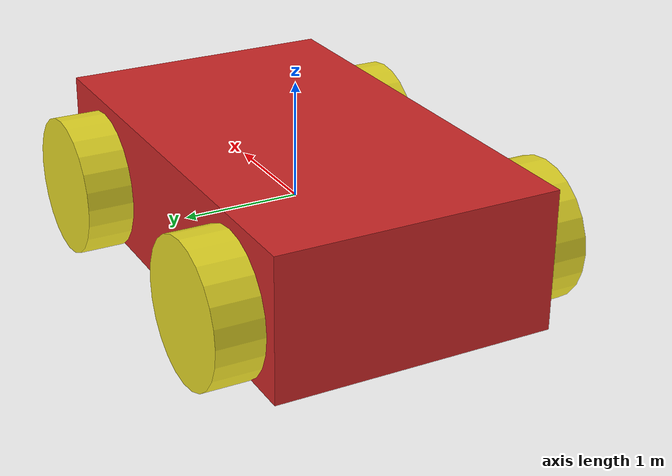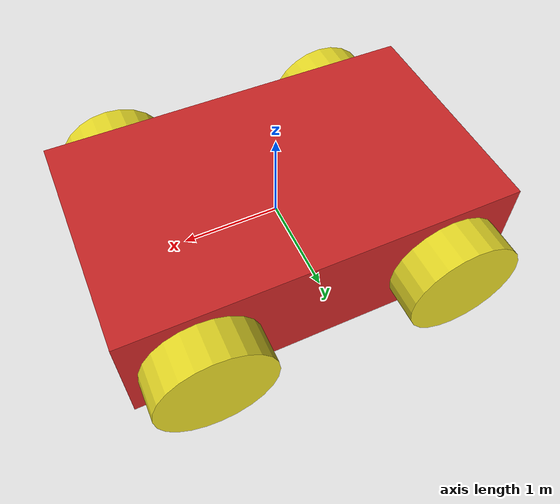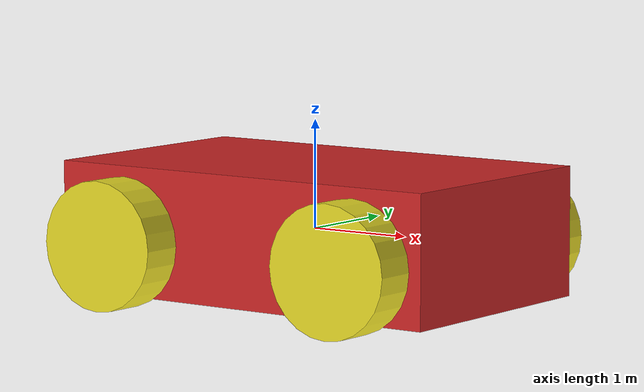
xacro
<?xml version="1.0"?>

<robot name="differential_drive_robot" xmlns:xacro="http://www.ros.org/wiki/xacro">

<xacro:property name="cameraSize" value="0.05"/>
<xacro:property name="cameraMass" value="0.1"/>

  <material name="green">
    <color rgba="0.0 0.8 0.0 1.0"/>
  </material>

<!-- Body dimensions -->
<xacro:property name="body_link_x_dim" value="4"/>
<xacro:property name="body_link_y_dim" value="2.4"/>
<xacro:property name="body_link_z_dim" value="1.2"/>

<!-- Wheel dimensions -->
<xacro:property name="wheel_link_radius" value="0.6"/>
<xacro:property name="wheel_link_length" value="0.4"/>
<xacro:property name="wheel_link_z_location" value="-0.1"/>

<!-- Material Density -->
<xacro:property name="body_density" value="2710.0"/>
<xacro:property name="wheel_density" value="2710.0"/>

<!-- Pi Constant -->
<xacro:property name="pi_const" value="3.141592265"/>

<!-- Robot body and wheel mass -->
<xacro:property name="body_mass" value="${body_density*body_link_x_dim*body_link_y_dim*body_link_z_dim}"/>
<xacro:property name="wheel_mass" value="${wheel_density*pi_const*wheel_link_radius*wheel_link_radius*wheel_link_length}"/>

<!-- Moments of inertial of the wheel -->
<xacro:property name="Iz_wheel" value="${0.5*wheel_mass*wheel_link_radius*wheel_link_radius}"/>
<xacro:property name="I_wheel" value="${(1.0/12.0)*wheel_mass*(3*wheel_link_radius*wheel_link_radius+wheel_link_length*wheel_link_length)}"/>

<!-- macros -->

<xacro:macro name="inertia_wheel">
    <inertial>
        <origin rpy="0 0 0" xyz="0 0 0"/>
        <mass value="${wheel_mass}"/>
        <inertia ixx="${I_wheel}" ixy="0.0" ixz="0.0" iyy="${I_wheel}" iyz="0" izz="${Iz_wheel}"/>

    </inertial>

</xacro:macro>

<xacro:include filename="$(find mobile_robot)/model/robot.gazebo"/>

<!-- DEFINING LINKS AND JOINTS -->

<link name="dummy">
</link>
<joint name="dummy_joint" type="fixed">
    <parent link="dummy"/>
    <child link="body_link"/>
</joint>

<!-- Body Link of Robot -->

<link name="body_link">
    <visual>
        <geometry>
            <box size="${body_link_x_dim} ${body_link_y_dim} ${body_link_z_dim}" />
        </geometry>
        <origin rpy="0 0 0" xyz="0 0 0"/>
    </visual>

    <collision>
        <geometry>
            <box size="${body_link_x_dim} ${body_link_y_dim} ${body_link_z_dim}" />
        </geometry>
        <origin rpy="0 0 0" xyz="0 0 0"/>

    </collision>

    <inertial>
        <origin rpy="0 0 0" xyz="0 0 0"/>
        <mass value="${body_mass}"/>
        <inertia
        ixx="${(1/12)*body_mass*(body_link_y_dim+body_link_z_dim*body_link_z_dim)}"
        ixy="0"
        ixz="0"
        iyy="${(1/12)*body_mass*(body_link_x_dim*body_link_x_dim+body_link_z_dim*body_link_z_dim)}"
        iyz="0"
        izz="${(1/12)*body_mass*(body_link_y_dim*body_link_y_dim+body_link_x_dim*body_link_x_dim)}"/>
    </inertial>
</link>

<!-- Back Right Wheel of Robot & Joint -->

<joint name="wheel1_joint" type="continuous">
    <parent link="body_link"/>
    <child link="wheel1_link"/>
    <origin xyz="${-body_link_x_dim/2+1.2*wheel_link_radius} ${-body_link_y_dim/2-wheel_link_length/2} ${wheel_link_z_location}" rpy="0 0 0"/>
    <axis xyz="0 1 0"/>
    <limit effort="1000" velocity="1000"/>
    <dynamics damping="1.0" friction="1.0"/>
</joint>

<link name="wheel1_link">
    <visual>
        <origin rpy="1.570795 0 0" xyz="0 0 0"/>
        <geometry>
            <cylinder length="${wheel_link_length}" radius="${wheel_link_radius}"/>
        </geometry>
    </visual>

    <collision>
        <origin rpy="1.570795 0 0" xyz="0 0 0"/>
        <geometry>
            <cylinder length="${wheel_link_length}" radius="${wheel_link_radius}"/>
        </geometry>
    </collision>

    <xacro:inertia_wheel />
</link>

<!-- Back Left Wheel of Robot & Joint -->

<joint name="wheel2_joint" type="continuous">
    <parent link="body_link"/>
    <child link="wheel2_link"/>
    <origin xyz="${-body_link_x_dim/2+1.2*wheel_link_radius} ${body_link_y_dim/2+wheel_link_length/2} ${wheel_link_z_location}" rpy="0 0 0"/>
    <axis xyz="0 1 0"/>
    <limit effort="1000" velocity="1000"/>
    <dynamics damping="1.0" friction="1.0"/>
</joint>

<link name="wheel2_link">
    <visual>
        <origin rpy="1.570795 0 0" xyz="0 0 0"/>
        <geometry>
            <cylinder length="${wheel_link_length}" radius="${wheel_link_radius}"/>
        </geometry>
    </visual>

    <collision>
        <origin rpy="1.570795 0 0" xyz="0 0 0"/>
        <geometry>
            <cylinder length="${wheel_link_length}" radius="${wheel_link_radius}"/>
        </geometry>
    </collision>

    <xacro:inertia_wheel />
</link>

<!-- Front Right Wheel of Robot & Joint -->

<joint name="wheel3_joint" type="continuous">
    <parent link="body_link"/>
    <child link="wheel3_link"/>
    <origin xyz="${body_link_x_dim/2-1.2*wheel_link_radius} ${-body_link_y_dim/2-wheel_link_length/2} ${wheel_link_z_location}" rpy="0 0 0"/>
    <axis xyz="0 1 0"/>
    <limit effort="1000" velocity="1000"/>
    <dynamics damping="1.0" friction="1.0"/>
</joint>

<link name="wheel3_link">
    <visual>
        <origin rpy="1.570795 0 0" xyz="0 0 0"/>
        <geometry>
            <cylinder length="${wheel_link_length}" radius="${wheel_link_radius}"/>
        </geometry>
    </visual>

    <collision>
        <origin rpy="1.570795 0 0" xyz="0 0 0"/>
        <geometry>
            <cylinder length="${wheel_link_length}" radius="${wheel_link_radius}"/>
        </geometry>
    </collision>

    <xacro:inertia_wheel />
</link>

<!-- Front Left Wheel of Robot & Joint -->

<joint name="wheel4_joint" type="continuous">
    <parent link="body_link"/>
    <child link="wheel4_link"/>
    <origin xyz="${body_link_x_dim/2-1.2*wheel_link_radius} ${body_link_y_dim/2+wheel_link_length/2} ${wheel_link_z_location}" rpy="0 0 0"/>
    <axis xyz="0 1 0"/>
    <limit effort="1000" velocity="1000"/>
    <dynamics damping="1.0" friction="1.0"/>
</joint>

<link name="wheel4_link">
    <visual>
        <origin rpy="1.570795 0 0" xyz="0 0 0"/>
        <geometry>
            <cylinder length="${wheel_link_length}" radius="${wheel_link_radius}"/>
        </geometry>
    </visual>

    <collision>
        <origin rpy="1.570795 0 0" xyz="0 0 0"/>
        <geometry>
            <cylinder length="${wheel_link_length}" radius="${wheel_link_radius}"/>
        </geometry>
    </collision>

    <xacro:inertia_wheel />
</link>

<link name="camera_link">
    <collision>
      <origin xyz="0 0 0" rpy="0 0 0"/>
      <geometry>
        <box size="${cameraSize} ${cameraSize} ${cameraSize}"/>
      </geometry>
    </collision>

    <visual>
      <origin xyz="0 0 0" rpy="0 0 0"/>
      <geometry>
        <box size="${cameraSize} ${cameraSize} ${cameraSize}"/>
      </geometry>
      <material name="green"/>
    </visual>

    <inertial>
      <mass value="${cameraMass}" />
      <origin xyz="0 0 0" rpy="0 0 0"/>
      <box_inertia m="${cameraMass}" x="${cameraSize}" y="${cameraSize}" z="${cameraSize}" />
      <inertia ixx="1e-6" ixy="0" ixz="0" iyy="1e-6" iyz="0" izz="1e-6" />
    </inertial>
</link>

<joint name="camera_joint" type="fixed">
    <axis xyz="0 1 0" />
    <origin xyz=".2 0 0" rpy="0 0 0"/>
    <parent link="body_link"/>
    <child link="camera_link"/>
</joint>

</robot>
